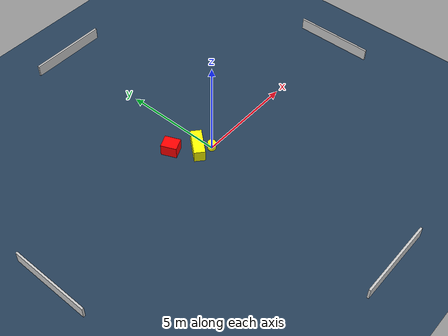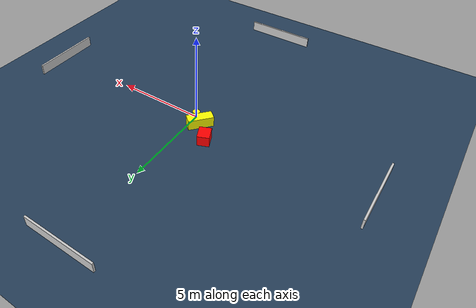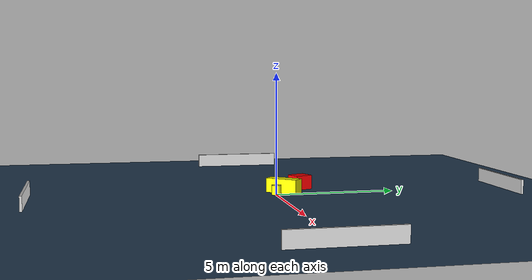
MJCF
<?xml version="1.0" ?>
<mujoco model="generated_environment">
  <option timestep="0.01" integrator="RK4" cone="elliptic"/>
  <default>
    <geom density="1"/>
  </default>
  <asset>
    <texture builtin="gradient" height="3072" name="skybox" rgb1="0.3 0.5 0.7" rgb2="0 0 0" type="skybox" width="512"/>
    <texture builtin="checker" height="300" name="groundplane" rgb1="0.2 0.3 0.4" rgb2="0.1 0.2 0.3" type="2d" width="300"/>
    <material name="groundplane" reflectance="0.2" texrepeat="5 5" texture="groundplane"/>
  </asset>
  <worldbody>
    <light dir="0 0 -1" directional="true" pos="0 0 1.5"/>
    <geom condim="3" friction="0.5 0.005 0.001" material="groundplane" name="floor" pos="0 0 0" size="0 0 0.05" type="plane"/>
    <body name="walls">
      <geom name="wall_1" condim="4" pos="-10.0 0.0 0.3" rgba="0.800000011920929 0.800000011920929 0.800000011920929 1.0" size="0.05 2.0 0.3" type="box"/>
      <geom name="wall_2" condim="4" pos="10.0 0.0 0.3" rgba="0.800000011920929 0.800000011920929 0.800000011920929 1.0" size="0.05 2.0 0.3" type="box"/>
      <geom name="wall_3" condim="4" pos="0.0 -10.0 0.3" rgba="0.800000011920929 0.800000011920929 0.800000011920929 1.0" size="2.0 0.05 0.3" type="box"/>
      <geom name="wall_4" condim="4" pos="0.0 10.0 0.3" rgba="0.800000011920929 0.800000011920929 0.800000011920929 1.0" size="2.0 0.05 0.3" type="box"/>
    </body>
    <body name="robot">
      <joint name="joint_x" type="slide" pos="0 0 0" axis="1 0 0"/>
      <joint name="joint_y" type="slide" pos="0 0 0" axis="0 1 0"/>
      <geom name="robot" type="cylinder" pos="0.0 0.0 0.2" size="0.2 0.2 0.0" mass="5.0" friction="1.0 0.005 0.0001" condim="4" rgba="1.0 1.0 0.0 1.0"/>
    </body>
    <body name="obstacle_1_movable">
      <geom name="obstacle_1_movable" condim="4" pos="-0.5168964973524012 0.4261110550291545 0.3" euler="0 0 229.19423220597304" friction="0.0 0.005 0.001" rgba="1.0 1.0 0.0 1.0" size="0.700546074000298 0.270842784722605 0.3" type="box" mass="0.1"/>
      <joint type="free"/>
    </body>
    <body name="obstacle_2_static">
      <geom name="obstacle_2_static" condim="4" pos="-1.401525772987171 1.3263126070025146 0.3" euler="0 0 203.22847292789916" friction="0.0 0.005 0.001" rgba="1.0 0.0 0.0 1.0" size="0.32913725335309096 0.38969693695247754 0.3" type="box"/>
    </body>
  </worldbody>
  <actuator>
    <motor name="actuator_x" joint="joint_x" gear="1" ctrlrange="-1 1"/>
    <motor name="actuator_y" joint="joint_y" gear="1" ctrlrange="-1 1"/>
  </actuator>
</mujoco>
